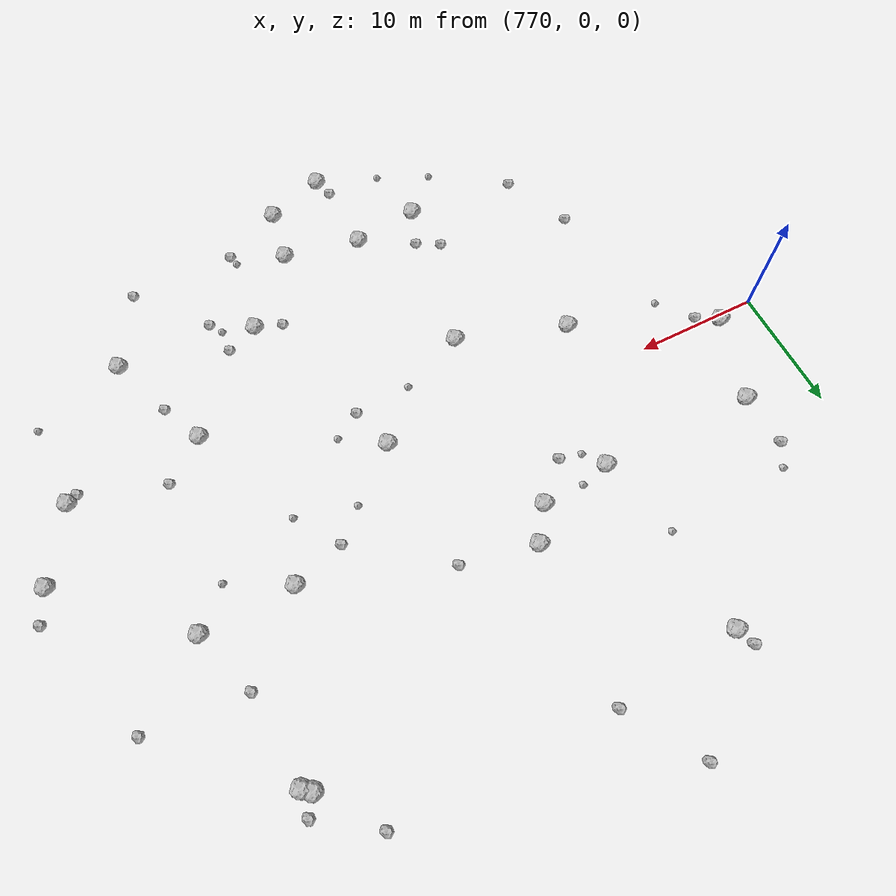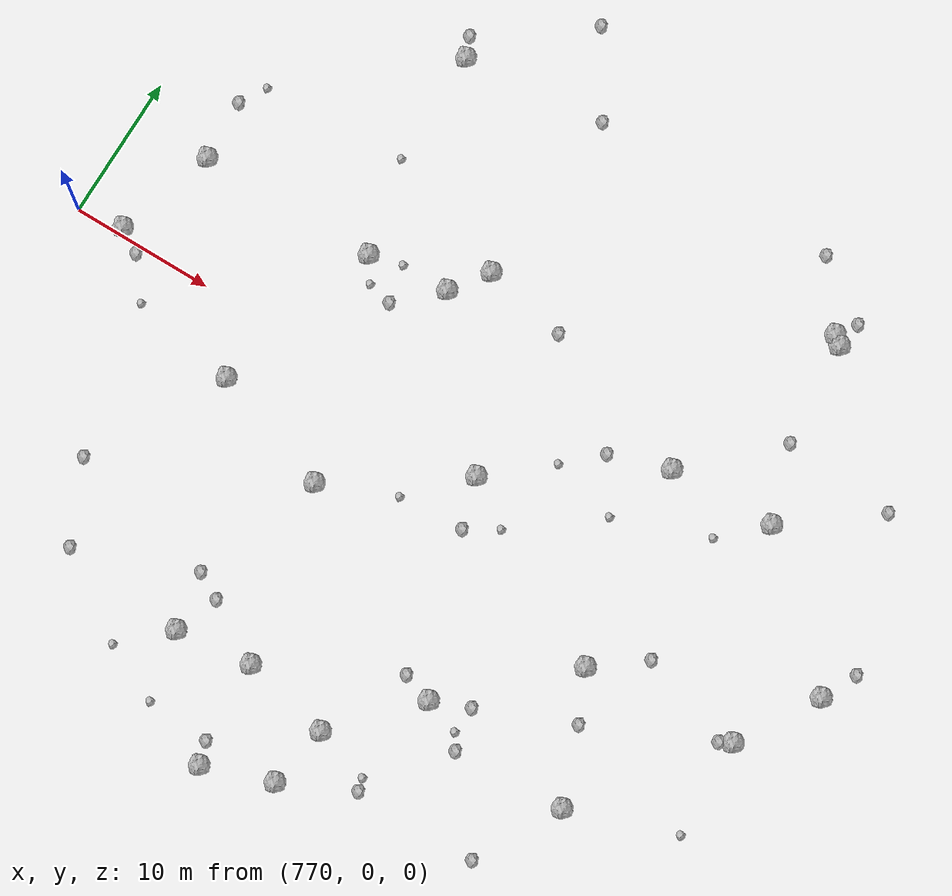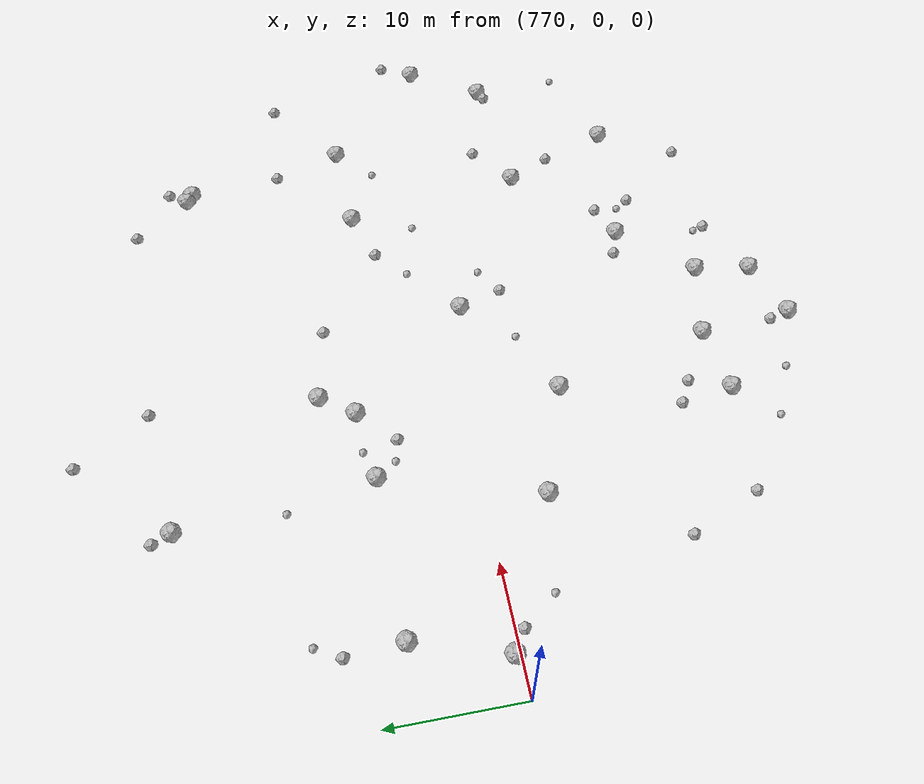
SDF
<sdf version="1.6">
 <world name="default">
  <include><uri>model://sun</uri></include>
  <model name="rock1_20_4">
   <include><uri>model://rock1</uri><pose>812.5923499842163 5.565776225801471 0.5 0 0 0</pose></include>
  </model>
  <model name="rock1_20_5">
   <include><uri>model://rock1</uri><pose>784.527270753518 -4.538577034490071 0.5 0 0 0</pose></include>
  </model>
  <model name="rock1_20_6">
   <include><uri>model://rock1</uri><pose>790.7053585600244 -20.335006181462994 0.5 0 0 0</pose></include>
  </model>
  <model name="rock1_20_7">
   <include><uri>model://rock1</uri><pose>825.1675848895511 -7.708884598672295 0.5 0 0 0</pose></include>
  </model>
  <model name="rock1_20_8">
   <include><uri>model://rock1</uri><pose>795.6131224654283 10.632923303301993 0.5 0 0 0</pose></include>
  </model>
  <model name="rock1_20_9">
   <include><uri>model://rock1</uri><pose>773.2464717964513 0.44891965517408394 0.5 0 0 0</pose></include>
  </model>
  <model name="rock1_20_10">
   <include><uri>model://rock1</uri><pose>820.0095396555796 5.828067060210898 0.5 0 0 0</pose></include>
  </model>
  <model name="rock1_20_11">
   <include><uri>model://rock1</uri><pose>817.0838300603797 18.929888412819807 0.5 0 0 0</pose></include>
  </model>
  <model name="rock1_20_12">
   <include><uri>model://rock1</uri><pose>802.1611917680779 -21.00480997893621 0.5 0 0 0</pose></include>
  </model>
  <model name="rock1_20_13">
   <include><uri>model://rock1</uri><pose>796.6810475368754 -26.950701219756937 0.5 0 0 0</pose></include>
  </model>
  <model name="rock1_20_14">
   <include><uri>model://rock1</uri><pose>801.4212042493541 -25.32598102949774 0.5 0 0 0</pose></include>
  </model>
  <model name="rock1_20_15">
   <include><uri>model://rock1</uri><pose>817.7179405931664 18.421484067643313 0.5 0 0 0</pose></include>
  </model>
  <model name="rock1_20_16">
   <include><uri>model://rock1</uri><pose>807.0424862475235 -15.665421809585286 0.5 0 0 0</pose></include>
  </model>
  <model name="rock1_20_17">
   <include><uri>model://rock1</uri><pose>814.5296814770169 -8.497999664922546 0.5 0 0 0</pose></include>
  </model>
  <model name="rock1_20_18">
   <include><uri>model://rock1</uri><pose>793.1777553300523 -7.445885169782539 0.5 0 0 0</pose></include>
  </model>
  <model name="rock1_20_19">
   <include><uri>model://rock1</uri><pose>828.5245871453153 -2.2172570969843513 0.5 0 0 0</pose></include>
  </model>
  <model name="rock1_20_20">
   <include><uri>model://rock1</uri><pose>793.7653320153311 8.070838762899513 0.5 0 0 0</pose></include>
  </model>
  <model name="rock1_20_21">
   <include><uri>model://rock1</uri><pose>788.0750560039761 7.403526933863773 0.5 0 0 0</pose></include>
  </model>
  <model name="rock1_20_22">
   <include><uri>model://rock1</uri><pose>775.4534216331976 7.387207761555423 0.5 0 0 0</pose></include>
  </model>
  <model name="rock1_20_23">
   <include><uri>model://rock1</uri><pose>817.9951549953117 -17.08754465135337 0.5 0 0 0</pose></include>
  </model>
  <model name="rock1_20_24">
   <include><uri>model://rock1</uri><pose>801.9462002588489 -1.5300173011132259 0.5 0 0 0</pose></include>
  </model>
  <model name="rock1_20_25">
   <include><uri>model://rock1</uri><pose>796.0191866540524 -19.695703994572305 0.5 0 0 0</pose></include>
  </model>
  <model name="rock1_20_26">
   <include><uri>model://rock1</uri><pose>786.4574754032144 22.282699006787887 0.5 0 0 0</pose></include>
  </model>
  <model name="rock2_20_0">
   <include><uri>model://rock2</uri><pose>817.8952570400496 -5.852317387742904 0.3 0 0 0</pose></include>
  </model>
  <model name="rock2_20_1">
   <include><uri>model://rock2</uri><pose>785.8248732651498 23.738419859691994 0.3 0 0 0</pose></include>
  </model>
  <model name="rock2_20_2">
   <include><uri>model://rock2</uri><pose>796.1683141912981 -25.37616589496255 0.3 0 0 0</pose></include>
  </model>
  <model name="rock2_20_3">
   <include><uri>model://rock2</uri><pose>796.4920709872775 23.301304522563996 0.3 0 0 0</pose></include>
  </model>
  <model name="rock2_20_4">
   <include><uri>model://rock2</uri><pose>802.9596834175833 -4.97614921958095 0.3 0 0 0</pose></include>
  </model>
  <model name="rock2_20_5">
   <include><uri>model://rock2</uri><pose>791.8135335858443 -17.283900453325632 0.3 0 0 0</pose></include>
  </model>
  <model name="rock2_20_6">
   <include><uri>model://rock2</uri><pose>824.3140001232304 -8.130596781655491 0.3 0 0 0</pose></include>
  </model>
  <model name="rock2_20_7">
   <include><uri>model://rock2</uri><pose>774.8912046064466 -0.5662647872638331 0.3 0 0 0</pose></include>
  </model>
  <model name="rock2_20_8">
   <include><uri>model://rock2</uri><pose>826.0764587305813 10.514725171512687 0.3 0 0 0</pose></include>
  </model>
  <model name="rock2_20_9">
   <include><uri>model://rock2</uri><pose>775.1526659203988 11.72722602708496 0.3 0 0 0</pose></include>
  </model>
  <model name="rock2_20_10">
   <include><uri>model://rock2</uri><pose>818.0039257359783 20.325137757922583 0.3 0 0 0</pose></include>
  </model>
  <model name="rock2_20_11">
   <include><uri>model://rock2</uri><pose>789.9869194676874 -16.27847695324572 0.3 0 0 0</pose></include>
  </model>
  <model name="rock2_20_12">
   <include><uri>model://rock2</uri><pose>779.3673879271788 -13.876101656066915 0.3 0 0 0</pose></include>
  </model>
  <model name="rock2_20_13">
   <include><uri>model://rock2</uri><pose>816.0764512260683 -11.905500175826017 0.3 0 0 0</pose></include>
  </model>
  <model name="rock2_20_14">
   <include><uri>model://rock2</uri><pose>804.9130593411569 -14.97099267195819 0.3 0 0 0</pose></include>
  </model>
  <model name="rock2_20_15">
   <include><uri>model://rock2</uri><pose>810.202760138224 -17.529082551567857 0.3 0 0 0</pose></include>
  </model>
  <model name="rock2_20_16">
   <include><uri>model://rock2</uri><pose>792.9589522201894 28.96566569347518 0.3 0 0 0</pose></include>
  </model>
  <model name="rock2_20_17">
   <include><uri>model://rock2</uri><pose>818.2531488845401 11.141961890630924 0.3 0 0 0</pose></include>
  </model>
  <model name="rock2_20_18">
   <include><uri>model://rock2</uri><pose>781.8454860536262 -19.36677269616616 0.3 0 0 0</pose></include>
  </model>
  <model name="rock2_20_19">
   <include><uri>model://rock2</uri><pose>790.9209500183022 5.3775617815341406 0.3 0 0 0</pose></include>
  </model>
  <model name="rock2_20_20">
   <include><uri>model://rock2</uri><pose>801.5255436906009 9.451744422919752 0.3 0 0 0</pose></include>
  </model>
  <model name="rock2_20_21">
   <include><uri>model://rock2</uri><pose>808.4147449548149 4.2349283071061095 0.3 0 0 0</pose></include>
  </model>
  <model name="rock2_20_22">
   <include><uri>model://rock2</uri><pose>813.830855038833 23.260959417407406 0.3 0 0 0</pose></include>
  </model>
  <model name="rock2_20_23">
   <include><uri>model://rock2</uri><pose>806.2544882771406 -22.99535672213983 0.3 0 0 0</pose></include>
  </model>
  <model name="rock2_20_24">
   <include><uri>model://rock2</uri><pose>829.7092986520934 0.26098287488581207 0.3 0 0 0</pose></include>
  </model>
  <model name="rock2_20_25">
   <include><uri>model://rock2</uri><pose>809.6389378345787 -14.598417647516529 0.3 0 0 0</pose></include>
  </model>
  <model name="rock2_20_26">
   <include><uri>model://rock2</uri><pose>814.7820660027919 -22.908759766747053 0.3 0 0 0</pose></include>
  </model>
  <model name="rock3_20_0">
   <include><uri>model://rock3</uri><pose>825.3337993903383 -14.57116524059694 0.2 0 0 0</pose></include>
  </model>
  <model name="rock3_20_1">
   <include><uri>model://rock3</uri><pose>805.1287951226584 -3.680409419820741 0.2 0 0 0</pose></include>
  </model>
  <model name="rock3_20_2">
   <include><uri>model://rock3</uri><pose>798.3508671829995 -5.309809973986869 0.2 0 0 0</pose></include>
  </model>
  <model name="rock3_20_3">
   <include><uri>model://rock3</uri><pose>806.0056610202454 -22.168202591807287 0.2 0 0 0</pose></include>
  </model>
  <model name="rock3_20_4">
   <include><uri>model://rock3</uri><pose>791.7103616026474 -25.162032172822766 0.2 0 0 0</pose></include>
  </model>
  <model name="rock3_20_5">
   <include><uri>model://rock3</uri><pose>789.1619076499061 5.767997984968787 0.2 0 0 0</pose></include>
  </model>
  <model name="rock3_20_6">
   <include><uri>model://rock3</uri><pose>809.5103322903658 -16.529931884272315 0.2 0 0 0</pose></include>
  </model>
  <model name="rock3_20_7">
   <include><uri>model://rock3</uri><pose>810.7110474035552 0.7306626650844059 0.2 0 0 0</pose></include>
  </model>
  <model name="rock3_20_8">
   <include><uri>model://rock3</uri><pose>817.1788625983302 3.0812615919988104 0.2 0 0 0</pose></include>
  </model>
  <model name="rock3_20_9">
   <include><uri>model://rock3</uri><pose>776.2008980935445 13.564433856216048 0.2 0 0 0</pose></include>
  </model>
  <model name="rock3_20_10">
   <include><uri>model://rock3</uri><pose>787.6342005855734 -23.291417329461765 0.2 0 0 0</pose></include>
  </model>
  <model name="rock3_20_11">
   <include><uri>model://rock3</uri><pose>776.985393280954 -3.263622114087738 0.2 0 0 0</pose></include>
  </model>
  <model name="rock3_20_12">
   <include><uri>model://rock3</uri><pose>806.0365676226897 1.9851798056995769 0.2 0 0 0</pose></include>
  </model>
  <model name="rock3_20_13">
   <include><uri>model://rock3</uri><pose>786.4005246924978 14.109553731972298 0.2 0 0 0</pose></include>
  </model>
  <model name="rock3_20_14">
   <include><uri>model://rock3</uri><pose>790.335257942338 8.004090067843755 0.2 0 0 0</pose></include>
  </model>
 </world>
</sdf>
